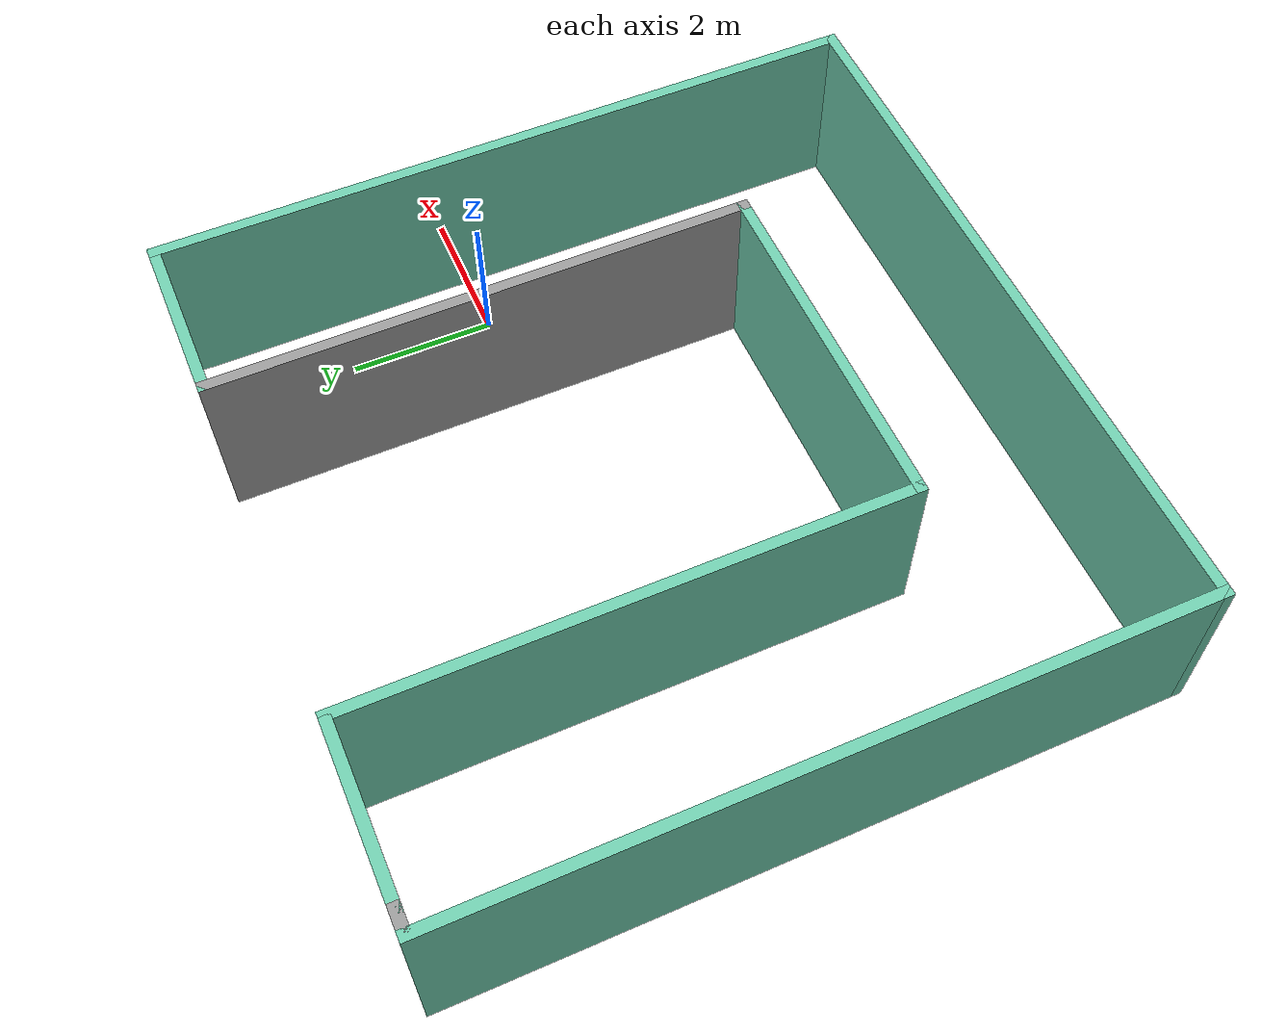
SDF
<?xml version='1.0'?>
<sdf version='1.6'>
  <model name='mybuilding'>
    <pose frame=''>-3.97842 -0.855116 0 0 -0 0</pose>
    <link name='Wall_11'>
      <collision name='Wall_11_Collision'>
        <geometry>
          <box>
            <size>2.5 0.15 2.5</size>
          </box>
        </geometry>
        <pose frame=''>0 0 1.25 0 -0 0</pose>
      </collision>
      <visual name='Wall_11_Visual'>
        <pose frame=''>0 0 1.25 0 -0 0</pose>
        <geometry>
          <box>
            <size>2.5 0.15 2.5</size>
          </box>
        </geometry>
        <material>
          <script>
            <uri>file://media/materials/scripts/gazebo.material</uri>
            <name>Gazebo/Grey</name>
          </script>
          <ambient>0.435294 0.796078 0.67451 1</ambient>
        </material>
      </visual>
      <pose frame=''>-3.45 4.925 0 0 -0 0</pose>
    </link>
    <link name='Wall_12'>
      <collision name='Wall_12_Collision'>
        <geometry>
          <box>
            <size>7.5 0.15 2.5</size>
          </box>
        </geometry>
        <pose frame=''>0 0 1.25 0 -0 0</pose>
      </collision>
      <visual name='Wall_12_Visual'>
        <pose frame=''>0 0 1.25 0 -0 0</pose>
        <geometry>
          <box>
            <size>7.5 0.15 2.5</size>
          </box>
        </geometry>
        <material>
          <script>
            <uri>file://media/materials/scripts/gazebo.material</uri>
            <name>Gazebo/Grey</name>
          </script>
          <ambient>0.435294 0.796078 0.67451 1</ambient>
        </material>
      </visual>
      <pose frame=''>-2.275 1.25 0 0 0 -1.5708</pose>
    </link>
    <link name='Wall_13'>
      <collision name='Wall_13_Collision'>
        <geometry>
          <box>
            <size>5 0.15 2.5</size>
          </box>
        </geometry>
        <pose frame=''>0 0 1.25 0 -0 0</pose>
      </collision>
      <visual name='Wall_13_Visual'>
        <pose frame=''>0 0 1.25 0 -0 0</pose>
        <geometry>
          <box>
            <size>5 0.15 2.5</size>
          </box>
        </geometry>
        <material>
          <script>
            <uri>file://media/materials/scripts/gazebo.material</uri>
            <name>Gazebo/Grey</name>
          </script>
          <ambient>0.435294 0.796078 0.67451 1</ambient>
        </material>
      </visual>
      <pose frame=''>0.15 -2.425 0 0 -0 0</pose>
    </link>
    <link name='Wall_14'>
      <collision name='Wall_14_Collision'>
        <geometry>
          <box>
            <size>7.5 0.15 2.5</size>
          </box>
        </geometry>
        <pose frame=''>0 0 1.25 0 -0 0</pose>
      </collision>
      <visual name='Wall_14_Visual'>
        <pose frame=''>0 0 1.25 0 -0 0</pose>
        <geometry>
          <box>
            <size>7.5 0.15 2.5</size>
          </box>
        </geometry>
        <material>
          <script>
            <uri>file://media/materials/scripts/gazebo.material</uri>
            <name>Gazebo/Grey</name>
          </script>
          <ambient>1 1 1 1</ambient>
        </material>
      </visual>
      <pose frame=''>2.575 1.25 0 0 -0 1.5708</pose>
    </link>
    <link name='Wall_15'>
      <collision name='Wall_15_Collision'>
        <geometry>
          <box>
            <size>2.5 0.15 2.5</size>
          </box>
        </geometry>
        <pose frame=''>0 0 1.25 0 -0 0</pose>
      </collision>
      <visual name='Wall_15_Visual'>
        <pose frame=''>0 0 1.25 0 -0 0</pose>
        <geometry>
          <box>
            <size>2.5 0.15 2.5</size>
          </box>
        </geometry>
        <material>
          <script>
            <uri>file://media/materials/scripts/gazebo.material</uri>
            <name>Gazebo/Grey</name>
          </script>
          <ambient>0.435294 0.796078 0.67451 1</ambient>
        </material>
      </visual>
      <pose frame=''>3.75 4.925 0 0 -0 0</pose>
    </link>
    <link name='Wall_16'>
      <collision name='Wall_16_Collision'>
        <geometry>
          <box>
            <size>10 0.15 2.5</size>
          </box>
        </geometry>
        <pose frame=''>0 0 1.25 0 -0 0</pose>
      </collision>
      <visual name='Wall_16_Visual'>
        <pose frame=''>0 0 1.25 0 -0 0</pose>
        <geometry>
          <box>
            <size>10 0.15 2.5</size>
          </box>
        </geometry>
        <material>
          <script>
            <uri>file://media/materials/scripts/gazebo.material</uri>
            <name>Gazebo/Grey</name>
          </script>
          <ambient>0.435294 0.796078 0.67451 1</ambient>
        </material>
      </visual>
      <pose frame=''>4.925 0 0 0 0 -1.5708</pose>
    </link>
    <link name='Wall_17'>
      <collision name='Wall_17_Collision'>
        <geometry>
          <box>
            <size>10 0.15 2.5</size>
          </box>
        </geometry>
        <pose frame=''>0 0 1.25 0 -0 0</pose>
      </collision>
      <visual name='Wall_17_Visual'>
        <pose frame=''>0 0 1.25 0 -0 0</pose>
        <geometry>
          <box>
            <size>10 0.15 2.5</size>
          </box>
        </geometry>
        <material>
          <script>
            <uri>file://media/materials/scripts/gazebo.material</uri>
            <name>Gazebo/Grey</name>
          </script>
          <ambient>0.435294 0.796078 0.67451 1</ambient>
        </material>
      </visual>
      <pose frame=''>0 -4.925 0 0 -0 3.14159</pose>
    </link>
    <link name='Wall_18'>
      <collision name='Wall_18_Collision'>
        <geometry>
          <box>
            <size>10 0.15 2.5</size>
          </box>
        </geometry>
        <pose frame=''>0 0 1.25 0 -0 0</pose>
      </collision>
      <visual name='Wall_18_Visual'>
        <pose frame=''>0 0 1.25 0 -0 0</pose>
        <geometry>
          <box>
            <size>10 0.15 2.5</size>
          </box>
        </geometry>
        <material>
          <script>
            <uri>file://media/materials/scripts/gazebo.material</uri>
            <name>Gazebo/Grey</name>
          </script>
          <ambient>0.435294 0.796078 0.67451 1</ambient>
        </material>
      </visual>
      <pose frame=''>-4.925 0 0 0 -0 1.5708</pose>
    </link>
    <link name='Wall_19'>
      <collision name='Wall_19_Collision'>
        <geometry>
          <box>
            <size>0.45 0.15 2.5</size>
          </box>
        </geometry>
        <pose frame=''>0 0 1.25 0 -0 0</pose>
      </collision>
      <visual name='Wall_19_Visual'>
        <pose frame=''>0 0 1.25 0 -0 0</pose>
        <geometry>
          <box>
            <size>0.45 0.15 2.5</size>
          </box>
        </geometry>
        <material>
          <script>
            <uri>file://media/materials/scripts/gazebo.material</uri>
            <name>Gazebo/Grey</name>
          </script>
          <ambient>1 1 1 1</ambient>
        </material>
      </visual>
      <pose frame=''>-4.775 4.925 0 0 -0 0</pose>
    </link>
    <static>1</static>
  </model>
</sdf>
